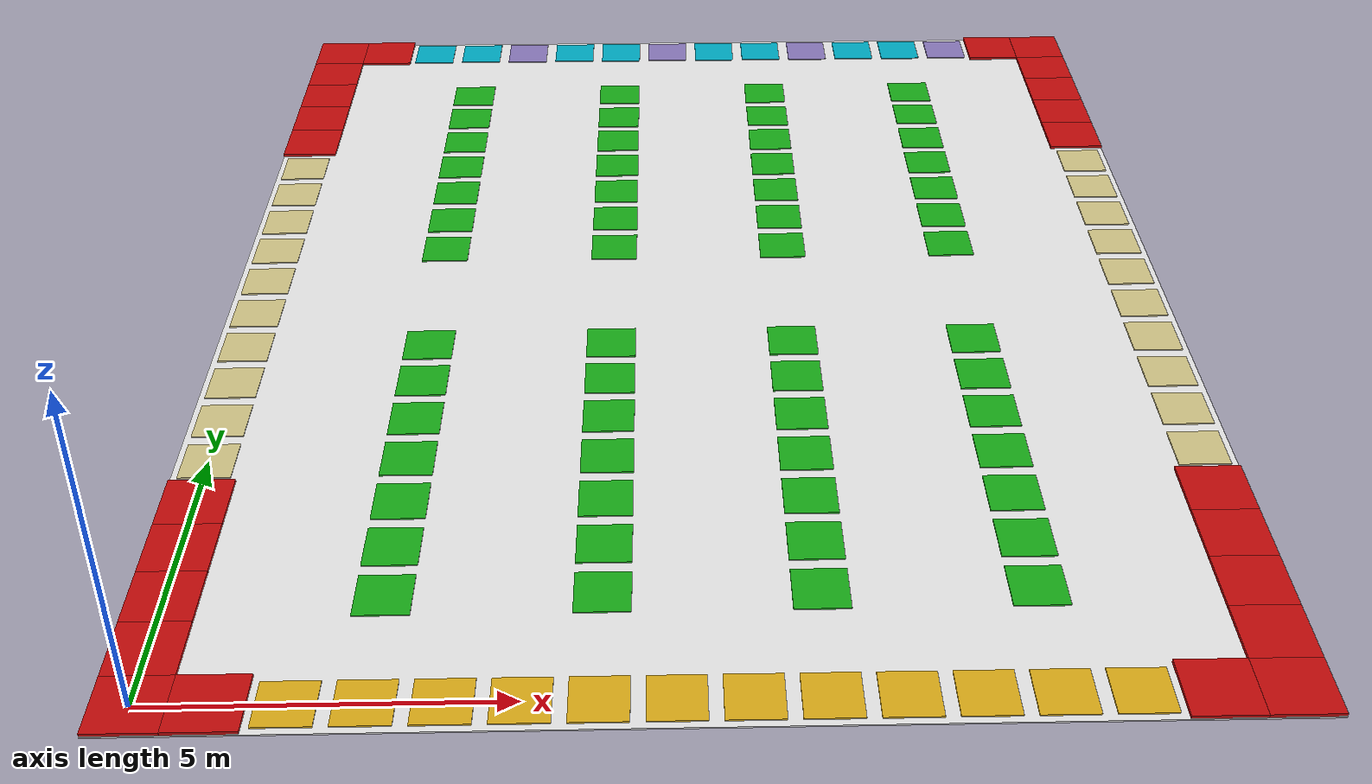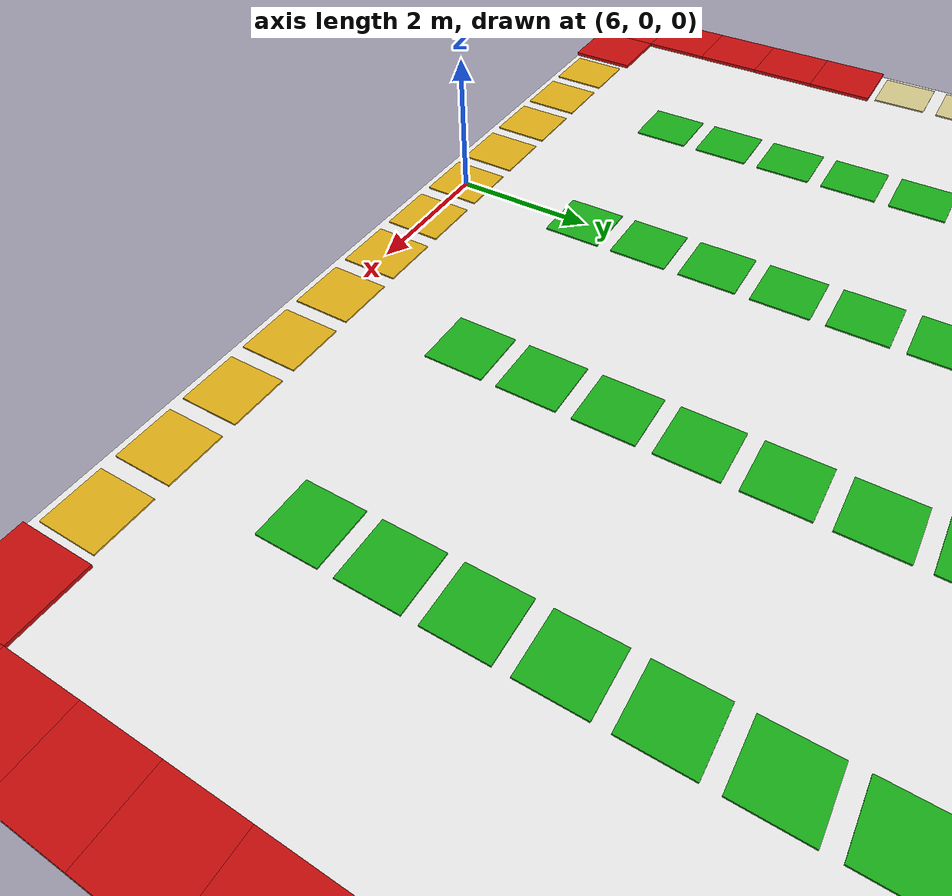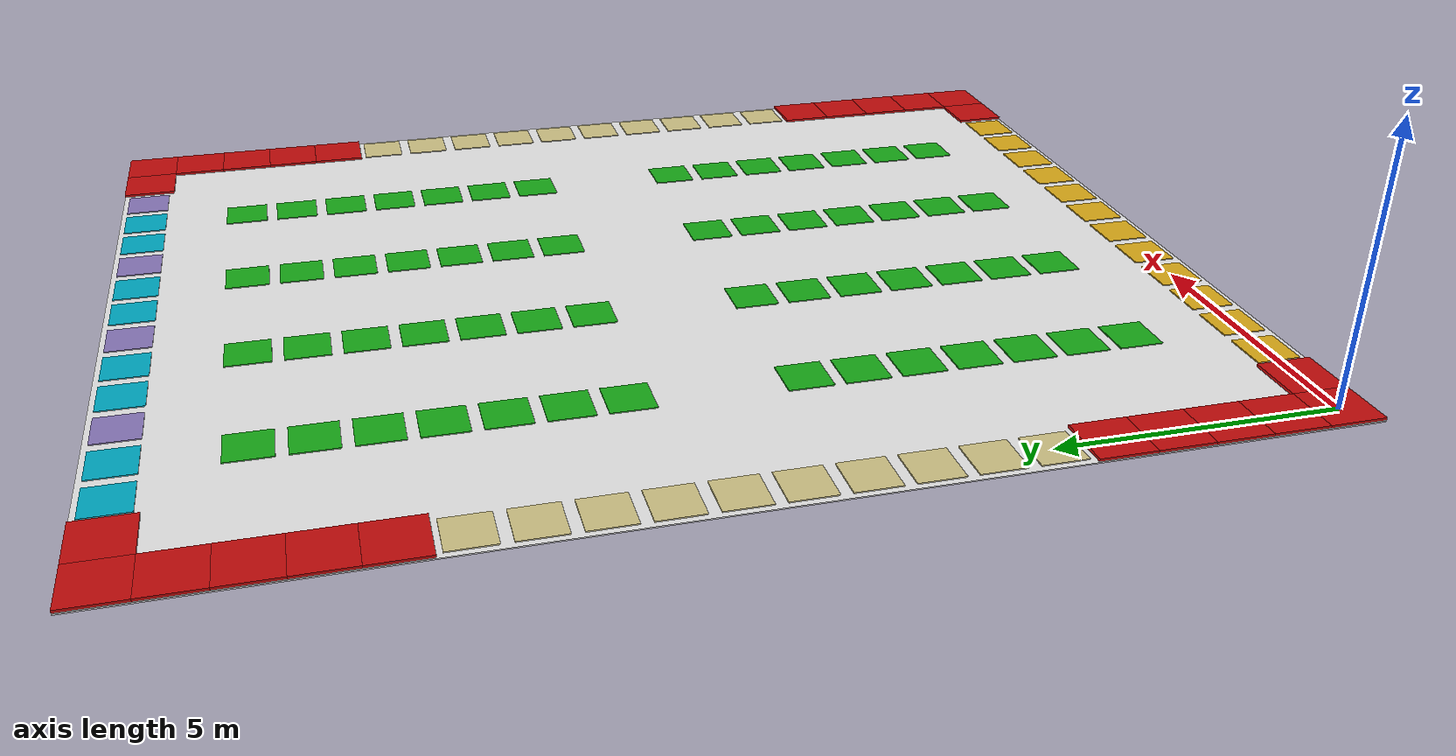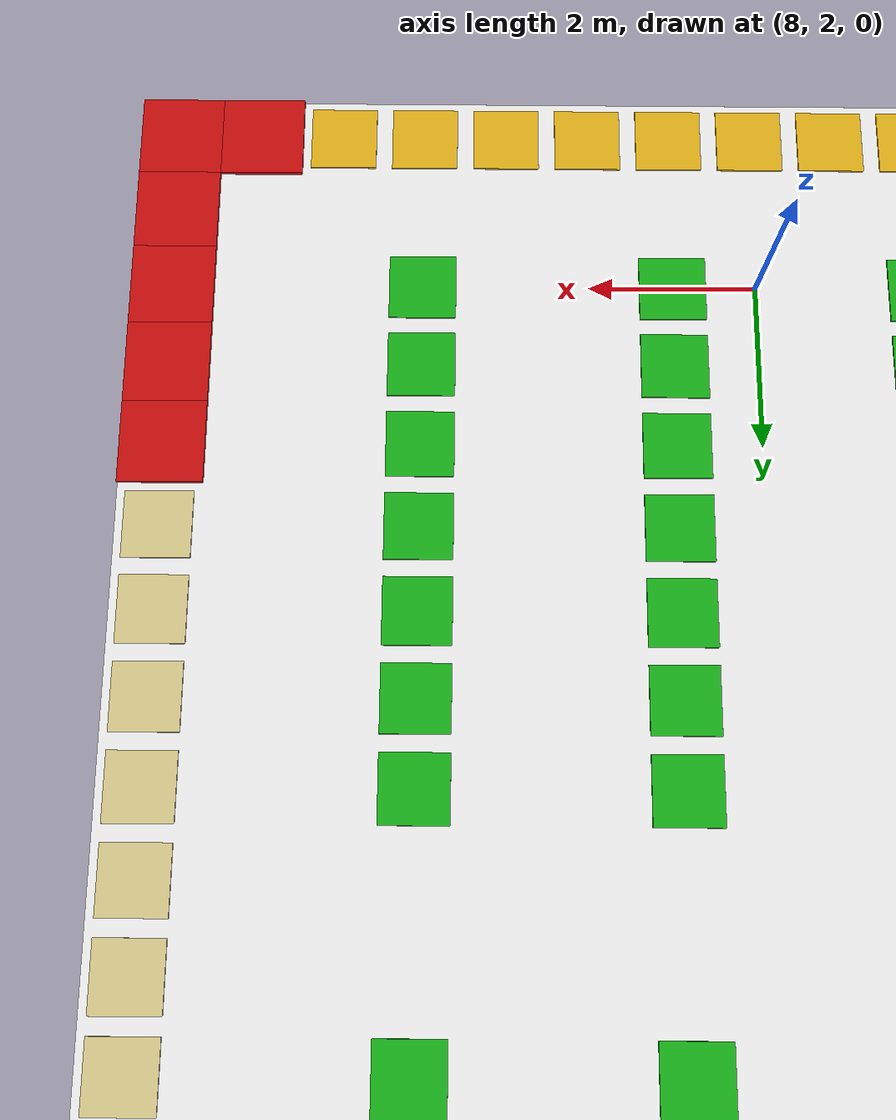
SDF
<sdf version="1.10">
 <world name="my_map_20">
  <model name="warehouse_floor">
   <static>true</static>
   <pose>7.5
        9.5
        0.0
        0 0 0</pose>
   <link name="floor_link">
    <visual name="floor_visual">
     <geometry><box><size>16.0
                20.0
                0.02</size></box></geometry>
     <material><ambient>0.95 0.95 0.95 1</ambient><diffuse>0.95 0.95 0.95 1</diffuse></material>
    </visual>
   </link>
  </model>
  <model name="blocked_0000">
   <static>true</static>
   <pose>0.0
        0.0
        0.045
        0 0 0</pose>
   <link name="link">
    <visual name="visual">
     <geometry><box><size>1.0
                1.0
                0.05</size></box></geometry>
     <material><ambient>0.8 0.05 0.05 1</ambient><diffuse>0.8 0.05 0.05 1</diffuse></material>
    </visual>
   </link>
  </model>
  <model name="blocked_0001">
   <static>true</static>
   <pose>0.0
        1.0
        0.045
        0 0 0</pose>
   <link name="link">
    <visual name="visual">
     <geometry><box><size>1.0
                1.0
                0.05</size></box></geometry>
     <material><ambient>0.8 0.05 0.05 1</ambient><diffuse>0.8 0.05 0.05 1</diffuse></material>
    </visual>
   </link>
  </model>
  <model name="blocked_0002">
   <static>true</static>
   <pose>0.0
        2.0
        0.045
        0 0 0</pose>
   <link name="link">
    <visual name="visual">
     <geometry><box><size>1.0
                1.0
                0.05</size></box></geometry>
     <material><ambient>0.8 0.05 0.05 1</ambient><diffuse>0.8 0.05 0.05 1</diffuse></material>
    </visual>
   </link>
  </model>
  <model name="blocked_0003">
   <static>true</static>
   <pose>0.0
        3.0
        0.045
        0 0 0</pose>
   <link name="link">
    <visual name="visual">
     <geometry><box><size>1.0
                1.0
                0.05</size></box></geometry>
     <material><ambient>0.8 0.05 0.05 1</ambient><diffuse>0.8 0.05 0.05 1</diffuse></material>
    </visual>
   </link>
  </model>
  <model name="blocked_0004">
   <static>true</static>
   <pose>0.0
        4.0
        0.045
        0 0 0</pose>
   <link name="link">
    <visual name="visual">
     <geometry><box><size>1.0
                1.0
                0.05</size></box></geometry>
     <material><ambient>0.8 0.05 0.05 1</ambient><diffuse>0.8 0.05 0.05 1</diffuse></material>
    </visual>
   </link>
  </model>
  <model name="blocked_0005">
   <static>true</static>
   <pose>0.0
        15.0
        0.045
        0 0 0</pose>
   <link name="link">
    <visual name="visual">
     <geometry><box><size>1.0
                1.0
                0.05</size></box></geometry>
     <material><ambient>0.8 0.05 0.05 1</ambient><diffuse>0.8 0.05 0.05 1</diffuse></material>
    </visual>
   </link>
  </model>
  <model name="blocked_0006">
   <static>true</static>
   <pose>0.0
        16.0
        0.045
        0 0 0</pose>
   <link name="link">
    <visual name="visual">
     <geometry><box><size>1.0
                1.0
                0.05</size></box></geometry>
     <material><ambient>0.8 0.05 0.05 1</ambient><diffuse>0.8 0.05 0.05 1</diffuse></material>
    </visual>
   </link>
  </model>
  <model name="blocked_0007">
   <static>true</static>
   <pose>0.0
        17.0
        0.045
        0 0 0</pose>
   <link name="link">
    <visual name="visual">
     <geometry><box><size>1.0
                1.0
                0.05</size></box></geometry>
     <material><ambient>0.8 0.05 0.05 1</ambient><diffuse>0.8 0.05 0.05 1</diffuse></material>
    </visual>
   </link>
  </model>
  <model name="blocked_0008">
   <static>true</static>
   <pose>0.0
        18.0
        0.045
        0 0 0</pose>
   <link name="link">
    <visual name="visual">
     <geometry><box><size>1.0
                1.0
                0.05</size></box></geometry>
     <material><ambient>0.8 0.05 0.05 1</ambient><diffuse>0.8 0.05 0.05 1</diffuse></material>
    </visual>
   </link>
  </model>
  <model name="blocked_0009">
   <static>true</static>
   <pose>0.0
        19.0
        0.045
        0 0 0</pose>
   <link name="link">
    <visual name="visual">
     <geometry><box><size>1.0
                1.0
                0.05</size></box></geometry>
     <material><ambient>0.8 0.05 0.05 1</ambient><diffuse>0.8 0.05 0.05 1</diffuse></material>
    </visual>
   </link>
  </model>
  <model name="blocked_0010">
   <static>true</static>
   <pose>1.0
        0.0
        0.045
        0 0 0</pose>
   <link name="link">
    <visual name="visual">
     <geometry><box><size>1.0
                1.0
                0.05</size></box></geometry>
     <material><ambient>0.8 0.05 0.05 1</ambient><diffuse>0.8 0.05 0.05 1</diffuse></material>
    </visual>
   </link>
  </model>
  <model name="blocked_0011">
   <static>true</static>
   <pose>1.0
        19.0
        0.045
        0 0 0</pose>
   <link name="link">
    <visual name="visual">
     <geometry><box><size>1.0
                1.0
                0.05</size></box></geometry>
     <material><ambient>0.8 0.05 0.05 1</ambient><diffuse>0.8 0.05 0.05 1</diffuse></material>
    </visual>
   </link>
  </model>
  <model name="blocked_0012">
   <static>true</static>
   <pose>14.0
        0.0
        0.045
        0 0 0</pose>
   <link name="link">
    <visual name="visual">
     <geometry><box><size>1.0
                1.0
                0.05</size></box></geometry>
     <material><ambient>0.8 0.05 0.05 1</ambient><diffuse>0.8 0.05 0.05 1</diffuse></material>
    </visual>
   </link>
  </model>
  <model name="blocked_0013">
   <static>true</static>
   <pose>14.0
        19.0
        0.045
        0 0 0</pose>
   <link name="link">
    <visual name="visual">
     <geometry><box><size>1.0
                1.0
                0.05</size></box></geometry>
     <material><ambient>0.8 0.05 0.05 1</ambient><diffuse>0.8 0.05 0.05 1</diffuse></material>
    </visual>
   </link>
  </model>
  <model name="blocked_0014">
   <static>true</static>
   <pose>15.0
        0.0
        0.045
        0 0 0</pose>
   <link name="link">
    <visual name="visual">
     <geometry><box><size>1.0
                1.0
                0.05</size></box></geometry>
     <material><ambient>0.8 0.05 0.05 1</ambient><diffuse>0.8 0.05 0.05 1</diffuse></material>
    </visual>
   </link>
  </model>
  <model name="blocked_0015">
   <static>true</static>
   <pose>15.0
        1.0
        0.045
        0 0 0</pose>
   <link name="link">
    <visual name="visual">
     <geometry><box><size>1.0
                1.0
                0.05</size></box></geometry>
     <material><ambient>0.8 0.05 0.05 1</ambient><diffuse>0.8 0.05 0.05 1</diffuse></material>
    </visual>
   </link>
  </model>
  <model name="blocked_0016">
   <static>true</static>
   <pose>15.0
        2.0
        0.045
        0 0 0</pose>
   <link name="link">
    <visual name="visual">
     <geometry><box><size>1.0
                1.0
                0.05</size></box></geometry>
     <material><ambient>0.8 0.05 0.05 1</ambient><diffuse>0.8 0.05 0.05 1</diffuse></material>
    </visual>
   </link>
  </model>
  <model name="blocked_0017">
   <static>true</static>
   <pose>15.0
        3.0
        0.045
        0 0 0</pose>
   <link name="link">
    <visual name="visual">
     <geometry><box><size>1.0
                1.0
                0.05</size></box></geometry>
     <material><ambient>0.8 0.05 0.05 1</ambient><diffuse>0.8 0.05 0.05 1</diffuse></material>
    </visual>
   </link>
  </model>
  <model name="blocked_0018">
   <static>true</static>
   <pose>15.0
        4.0
        0.045
        0 0 0</pose>
   <link name="link">
    <visual name="visual">
     <geometry><box><size>1.0
                1.0
                0.05</size></box></geometry>
     <material><ambient>0.8 0.05 0.05 1</ambient><diffuse>0.8 0.05 0.05 1</diffuse></material>
    </visual>
   </link>
  </model>
  <model name="blocked_0019">
   <static>true</static>
   <pose>15.0
        15.0
        0.045
        0 0 0</pose>
   <link name="link">
    <visual name="visual">
     <geometry><box><size>1.0
                1.0
                0.05</size></box></geometry>
     <material><ambient>0.8 0.05 0.05 1</ambient><diffuse>0.8 0.05 0.05 1</diffuse></material>
    </visual>
   </link>
  </model>
  <model name="blocked_0020">
   <static>true</static>
   <pose>15.0
        16.0
        0.045
        0 0 0</pose>
   <link name="link">
    <visual name="visual">
     <geometry><box><size>1.0
                1.0
                0.05</size></box></geometry>
     <material><ambient>0.8 0.05 0.05 1</ambient><diffuse>0.8 0.05 0.05 1</diffuse></material>
    </visual>
   </link>
  </model>
  <model name="blocked_0021">
   <static>true</static>
   <pose>15.0
        17.0
        0.045
        0 0 0</pose>
   <link name="link">
    <visual name="visual">
     <geometry><box><size>1.0
                1.0
                0.05</size></box></geometry>
     <material><ambient>0.8 0.05 0.05 1</ambient><diffuse>0.8 0.05 0.05 1</diffuse></material>
    </visual>
   </link>
  </model>
  <model name="blocked_0022">
   <static>true</static>
   <pose>15.0
        18.0
        0.045
        0 0 0</pose>
   <link name="link">
    <visual name="visual">
     <geometry><box><size>1.0
                1.0
                0.05</size></box></geometry>
     <material><ambient>0.8 0.05 0.05 1</ambient><diffuse>0.8 0.05 0.05 1</diffuse></material>
    </visual>
   </link>
  </model>
  <model name="blocked_0023">
   <static>true</static>
   <pose>15.0
        19.0
        0.045
        0 0 0</pose>
   <link name="link">
    <visual name="visual">
     <geometry><box><size>1.0
                1.0
                0.05</size></box></geometry>
     <material><ambient>0.8 0.05 0.05 1</ambient><diffuse>0.8 0.05 0.05 1</diffuse></material>
    </visual>
   </link>
  </model>
  <model name="charging_001">
   <static>true</static>
   <pose>2.0
        19.0
        0.02
        0 0 0</pose>
   <link name="link">
    <visual name="visual">
     <geometry><box><size>0.8
                0.8
                0.02</size></box></geometry>
     <material><ambient>0.00 0.70 0.80 1</ambient><diffuse>0.00 0.70 0.80 1</diffuse></material>
    </visual>
   </link>
  </model>
  <model name="charging_002">
   <static>true</static>
   <pose>3.0
        19.0
        0.02
        0 0 0</pose>
   <link name="link">
    <visual name="visual">
     <geometry><box><size>0.8
                0.8
                0.02</size></box></geometry>
     <material><ambient>0.00 0.70 0.80 1</ambient><diffuse>0.00 0.70 0.80 1</diffuse></material>
    </visual>
   </link>
  </model>
  <model name="charge_queue_001">
   <static>true</static>
   <pose>4.0
        19.0
        0.02
        0 0 0</pose>
   <link name="link">
    <visual name="visual">
     <geometry><box><size>0.8
                0.8
                0.02</size></box></geometry>
     <material><ambient>0.56 0.49 0.76 1</ambient><diffuse>0.56 0.49 0.76 1</diffuse></material>
    </visual>
   </link>
  </model>
  <model name="charging_003">
   <static>true</static>
   <pose>5.0
        19.0
        0.02
        0 0 0</pose>
   <link name="link">
    <visual name="visual">
     <geometry><box><size>0.8
                0.8
                0.02</size></box></geometry>
     <material><ambient>0.00 0.70 0.80 1</ambient><diffuse>0.00 0.70 0.80 1</diffuse></material>
    </visual>
   </link>
  </model>
  <model name="charging_004">
   <static>true</static>
   <pose>6.0
        19.0
        0.02
        0 0 0</pose>
   <link name="link">
    <visual name="visual">
     <geometry><box><size>0.8
                0.8
                0.02</size></box></geometry>
     <material><ambient>0.00 0.70 0.80 1</ambient><diffuse>0.00 0.70 0.80 1</diffuse></material>
    </visual>
   </link>
  </model>
  <model name="charge_queue_002">
   <static>true</static>
   <pose>7.0
        19.0
        0.02
        0 0 0</pose>
   <link name="link">
    <visual name="visual">
     <geometry><box><size>0.8
                0.8
                0.02</size></box></geometry>
     <material><ambient>0.56 0.49 0.76 1</ambient><diffuse>0.56 0.49 0.76 1</diffuse></material>
    </visual>
   </link>
  </model>
  <model name="charging_005">
   <static>true</static>
   <pose>8.0
        19.0
        0.02
        0 0 0</pose>
   <link name="link">
    <visual name="visual">
     <geometry><box><size>0.8
                0.8
                0.02</size></box></geometry>
     <material><ambient>0.00 0.70 0.80 1</ambient><diffuse>0.00 0.70 0.80 1</diffuse></material>
    </visual>
   </link>
  </model>
  <model name="charging_006">
   <static>true</static>
   <pose>9.0
        19.0
        0.02
        0 0 0</pose>
   <link name="link">
    <visual name="visual">
     <geometry><box><size>0.8
                0.8
                0.02</size></box></geometry>
     <material><ambient>0.00 0.70 0.80 1</ambient><diffuse>0.00 0.70 0.80 1</diffuse></material>
    </visual>
   </link>
  </model>
  <model name="charge_queue_003">
   <static>true</static>
   <pose>10.0
        19.0
        0.02
        0 0 0</pose>
   <link name="link">
    <visual name="visual">
     <geometry><box><size>0.8
                0.8
                0.02</size></box></geometry>
     <material><ambient>0.56 0.49 0.76 1</ambient><diffuse>0.56 0.49 0.76 1</diffuse></material>
    </visual>
   </link>
  </model>
  <model name="charging_007">
   <static>true</static>
   <pose>11.0
        19.0
        0.02
        0 0 0</pose>
   <link name="link">
    <visual name="visual">
     <geometry><box><size>0.8
                0.8
                0.02</size></box></geometry>
     <material><ambient>0.00 0.70 0.80 1</ambient><diffuse>0.00 0.70 0.80 1</diffuse></material>
    </visual>
   </link>
  </model>
  <model name="charging_008">
   <static>true</static>
   <pose>12.0
        19.0
        0.02
        0 0 0</pose>
   <link name="link">
    <visual name="visual">
     <geometry><box><size>0.8
                0.8
                0.02</size></box></geometry>
     <material><ambient>0.00 0.70 0.80 1</ambient><diffuse>0.00 0.70 0.80 1</diffuse></material>
    </visual>
   </link>
  </model>
  <model name="charge_queue_004">
   <static>true</static>
   <pose>13.0
        19.0
        0.02
        0 0 0</pose>
   <link name="link">
    <visual name="visual">
     <geometry><box><size>0.8
                0.8
                0.02</size></box></geometry>
     <material><ambient>0.56 0.49 0.76 1</ambient><diffuse>0.56 0.49 0.76 1</diffuse></material>
    </visual>
   </link>
  </model>
  <model name="shelf_001">
   <static>true</static>
   <pose>3.0
        17.0
        0.02
        0 0 0</pose>
   <link name="link">
    <visual name="visual">
     <geometry><box><size>0.8
                0.8
                0.02</size></box></geometry>
     <material><ambient>0.10 0.70 0.10 1</ambient><diffuse>0.10 0.70 0.10 1</diffuse></material>
    </visual>
   </link>
  </model>
  <model name="shelf_002">
   <static>true</static>
   <pose>6.0
        17.0
        0.02
        0 0 0</pose>
   <link name="link">
    <visual name="visual">
     <geometry><box><size>0.8
                0.8
                0.02</size></box></geometry>
     <material><ambient>0.10 0.70 0.10 1</ambient><diffuse>0.10 0.70 0.10 1</diffuse></material>
    </visual>
   </link>
  </model>
  <model name="shelf_003">
   <static>true</static>
   <pose>9.0
        17.0
        0.02
        0 0 0</pose>
   <link name="link">
    <visual name="visual">
     <geometry><box><size>0.8
                0.8
                0.02</size></box></geometry>
     <material><ambient>0.10 0.70 0.10 1</ambient><diffuse>0.10 0.70 0.10 1</diffuse></material>
    </visual>
   </link>
  </model>
  <model name="shelf_004">
   <static>true</static>
   <pose>12.0
        17.0
        0.02
        0 0 0</pose>
   <link name="link">
    <visual name="visual">
     <geometry><box><size>0.8
                0.8
                0.02</size></box></geometry>
     <material><ambient>0.10 0.70 0.10 1</ambient><diffuse>0.10 0.70 0.10 1</diffuse></material>
    </visual>
   </link>
  </model>
  <model name="shelf_005">
   <static>true</static>
   <pose>3.0
        16.0
        0.02
        0 0 0</pose>
   <link name="link">
    <visual name="visual">
     <geometry><box><size>0.8
                0.8
                0.02</size></box></geometry>
     <material><ambient>0.10 0.70 0.10 1</ambient><diffuse>0.10 0.70 0.10 1</diffuse></material>
    </visual>
   </link>
  </model>
  <model name="shelf_006">
   <static>true</static>
   <pose>6.0
        16.0
        0.02
        0 0 0</pose>
   <link name="link">
    <visual name="visual">
     <geometry><box><size>0.8
                0.8
                0.02</size></box></geometry>
     <material><ambient>0.10 0.70 0.10 1</ambient><diffuse>0.10 0.70 0.10 1</diffuse></material>
    </visual>
   </link>
  </model>
  <model name="shelf_007">
   <static>true</static>
   <pose>9.0
        16.0
        0.02
        0 0 0</pose>
   <link name="link">
    <visual name="visual">
     <geometry><box><size>0.8
                0.8
                0.02</size></box></geometry>
     <material><ambient>0.10 0.70 0.10 1</ambient><diffuse>0.10 0.70 0.10 1</diffuse></material>
    </visual>
   </link>
  </model>
  <model name="shelf_008">
   <static>true</static>
   <pose>12.0
        16.0
        0.02
        0 0 0</pose>
   <link name="link">
    <visual name="visual">
     <geometry><box><size>0.8
                0.8
                0.02</size></box></geometry>
     <material><ambient>0.10 0.70 0.10 1</ambient><diffuse>0.10 0.70 0.10 1</diffuse></material>
    </visual>
   </link>
  </model>
  <model name="shelf_009">
   <static>true</static>
   <pose>3.0
        15.0
        0.02
        0 0 0</pose>
   <link name="link">
    <visual name="visual">
     <geometry><box><size>0.8
                0.8
                0.02</size></box></geometry>
     <material><ambient>0.10 0.70 0.10 1</ambient><diffuse>0.10 0.70 0.10 1</diffuse></material>
    </visual>
   </link>
  </model>
  <model name="shelf_010">
   <static>true</static>
   <pose>6.0
        15.0
        0.02
        0 0 0</pose>
   <link name="link">
    <visual name="visual">
     <geometry><box><size>0.8
                0.8
                0.02</size></box></geometry>
     <material><ambient>0.10 0.70 0.10 1</ambient><diffuse>0.10 0.70 0.10 1</diffuse></material>
    </visual>
   </link>
  </model>
  <model name="shelf_011">
   <static>true</static>
   <pose>9.0
        15.0
        0.02
        0 0 0</pose>
   <link name="link">
    <visual name="visual">
     <geometry><box><size>0.8
                0.8
                0.02</size></box></geometry>
     <material><ambient>0.10 0.70 0.10 1</ambient><diffuse>0.10 0.70 0.10 1</diffuse></material>
    </visual>
   </link>
  </model>
  <model name="shelf_012">
   <static>true</static>
   <pose>12.0
        15.0
        0.02
        0 0 0</pose>
   <link name="link">
    <visual name="visual">
     <geometry><box><size>0.8
                0.8
                0.02</size></box></geometry>
     <material><ambient>0.10 0.70 0.10 1</ambient><diffuse>0.10 0.70 0.10 1</diffuse></material>
    </visual>
   </link>
  </model>
  <model name="staging_001">
   <static>true</static>
   <pose>0.0
        14.0
        0.02
        0 0 0</pose>
   <link name="link">
    <visual name="visual">
     <geometry><box><size>0.8
                0.8
                0.02</size></box></geometry>
     <material><ambient>0.85 0.80 0.55 1</ambient><diffuse>0.85 0.80 0.55 1</diffuse></material>
    </visual>
   </link>
  </model>
  <model name="shelf_013">
   <static>true</static>
   <pose>3.0
        14.0
        0.02
        0 0 0</pose>
   <link name="link">
    <visual name="visual">
     <geometry><box><size>0.8
                0.8
                0.02</size></box></geometry>
     <material><ambient>0.10 0.70 0.10 1</ambient><diffuse>0.10 0.70 0.10 1</diffuse></material>
    </visual>
   </link>
  </model>
  <model name="shelf_014">
   <static>true</static>
   <pose>6.0
        14.0
        0.02
        0 0 0</pose>
   <link name="link">
    <visual name="visual">
     <geometry><box><size>0.8
                0.8
                0.02</size></box></geometry>
     <material><ambient>0.10 0.70 0.10 1</ambient><diffuse>0.10 0.70 0.10 1</diffuse></material>
    </visual>
   </link>
  </model>
  <model name="shelf_015">
   <static>true</static>
   <pose>9.0
        14.0
        0.02
        0 0 0</pose>
   <link name="link">
    <visual name="visual">
     <geometry><box><size>0.8
                0.8
                0.02</size></box></geometry>
     <material><ambient>0.10 0.70 0.10 1</ambient><diffuse>0.10 0.70 0.10 1</diffuse></material>
    </visual>
   </link>
  </model>
  <model name="shelf_016">
   <static>true</static>
   <pose>12.0
        14.0
        0.02
        0 0 0</pose>
   <link name="link">
    <visual name="visual">
     <geometry><box><size>0.8
                0.8
                0.02</size></box></geometry>
     <material><ambient>0.10 0.70 0.10 1</ambient><diffuse>0.10 0.70 0.10 1</diffuse></material>
    </visual>
   </link>
  </model>
  <model name="staging_002">
   <static>true</static>
   <pose>15.0
        14.0
        0.02
        0 0 0</pose>
   <link name="link">
    <visual name="visual">
     <geometry><box><size>0.8
                0.8
                0.02</size></box></geometry>
     <material><ambient>0.85 0.80 0.55 1</ambient><diffuse>0.85 0.80 0.55 1</diffuse></material>
    </visual>
   </link>
  </model>
  <model name="staging_003">
   <static>true</static>
   <pose>0.0
        13.0
        0.02
        0 0 0</pose>
   <link name="link">
    <visual name="visual">
     <geometry><box><size>0.8
                0.8
                0.02</size></box></geometry>
     <material><ambient>0.85 0.80 0.55 1</ambient><diffuse>0.85 0.80 0.55 1</diffuse></material>
    </visual>
   </link>
  </model>
  <model name="shelf_017">
   <static>true</static>
   <pose>3.0
        13.0
        0.02
        0 0 0</pose>
   <link name="link">
    <visual name="visual">
     <geometry><box><size>0.8
                0.8
                0.02</size></box></geometry>
     <material><ambient>0.10 0.70 0.10 1</ambient><diffuse>0.10 0.70 0.10 1</diffuse></material>
    </visual>
   </link>
  </model>
  <model name="shelf_018">
   <static>true</static>
   <pose>6.0
        13.0
        0.02
        0 0 0</pose>
   <link name="link">
    <visual name="visual">
     <geometry><box><size>0.8
                0.8
                0.02</size></box></geometry>
     <material><ambient>0.10 0.70 0.10 1</ambient><diffuse>0.10 0.70 0.10 1</diffuse></material>
    </visual>
   </link>
  </model>
  <model name="shelf_019">
   <static>true</static>
   <pose>9.0
        13.0
        0.02
        0 0 0</pose>
   <link name="link">
    <visual name="visual">
     <geometry><box><size>0.8
                0.8
                0.02</size></box></geometry>
     <material><ambient>0.10 0.70 0.10 1</ambient><diffuse>0.10 0.70 0.10 1</diffuse></material>
    </visual>
   </link>
  </model>
  <model name="shelf_020">
   <static>true</static>
   <pose>12.0
        13.0
        0.02
        0 0 0</pose>
   <link name="link">
    <visual name="visual">
     <geometry><box><size>0.8
                0.8
                0.02</size></box></geometry>
     <material><ambient>0.10 0.70 0.10 1</ambient><diffuse>0.10 0.70 0.10 1</diffuse></material>
    </visual>
   </link>
  </model>
  <model name="staging_004">
   <static>true</static>
   <pose>15.0
        13.0
        0.02
        0 0 0</pose>
   <link name="link">
    <visual name="visual">
     <geometry><box><size>0.8
                0.8
                0.02</size></box></geometry>
     <material><ambient>0.85 0.80 0.55 1</ambient><diffuse>0.85 0.80 0.55 1</diffuse></material>
    </visual>
   </link>
  </model>
  <model name="staging_005">
   <static>true</static>
   <pose>0.0
        12.0
        0.02
        0 0 0</pose>
   <link name="link">
    <visual name="visual">
     <geometry><box><size>0.8
                0.8
                0.02</size></box></geometry>
     <material><ambient>0.85 0.80 0.55 1</ambient><diffuse>0.85 0.80 0.55 1</diffuse></material>
    </visual>
   </link>
  </model>
  <model name="shelf_021">
   <static>true</static>
   <pose>3.0
        12.0
        0.02
        0 0 0</pose>
   <link name="link">
    <visual name="visual">
     <geometry><box><size>0.8
                0.8
                0.02</size></box></geometry>
     <material><ambient>0.10 0.70 0.10 1</ambient><diffuse>0.10 0.70 0.10 1</diffuse></material>
    </visual>
   </link>
  </model>
  <model name="shelf_022">
   <static>true</static>
   <pose>6.0
        12.0
        0.02
        0 0 0</pose>
   <link name="link">
    <visual name="visual">
     <geometry><box><size>0.8
                0.8
                0.02</size></box></geometry>
     <material><ambient>0.10 0.70 0.10 1</ambient><diffuse>0.10 0.70 0.10 1</diffuse></material>
    </visual>
   </link>
  </model>
  <model name="shelf_023">
   <static>true</static>
   <pose>9.0
        12.0
        0.02
        0 0 0</pose>
   <link name="link">
    <visual name="visual">
     <geometry><box><size>0.8
                0.8
                0.02</size></box></geometry>
     <material><ambient>0.10 0.70 0.10 1</ambient><diffuse>0.10 0.70 0.10 1</diffuse></material>
    </visual>
   </link>
  </model>
  <model name="shelf_024">
   <static>true</static>
   <pose>12.0
        12.0
        0.02
        0 0 0</pose>
   <link name="link">
    <visual name="visual">
     <geometry><box><size>0.8
                0.8
                0.02</size></box></geometry>
     <material><ambient>0.10 0.70 0.10 1</ambient><diffuse>0.10 0.70 0.10 1</diffuse></material>
    </visual>
   </link>
  </model>
  <model name="staging_006">
   <static>true</static>
   <pose>15.0
        12.0
        0.02
        0 0 0</pose>
   <link name="link">
    <visual name="visual">
     <geometry><box><size>0.8
                0.8
                0.02</size></box></geometry>
     <material><ambient>0.85 0.80 0.55 1</ambient><diffuse>0.85 0.80 0.55 1</diffuse></material>
    </visual>
   </link>
  </model>
  <model name="staging_007">
   <static>true</static>
   <pose>0.0
        11.0
        0.02
        0 0 0</pose>
   <link name="link">
    <visual name="visual">
     <geometry><box><size>0.8
                0.8
                0.02</size></box></geometry>
     <material><ambient>0.85 0.80 0.55 1</ambient><diffuse>0.85 0.80 0.55 1</diffuse></material>
    </visual>
   </link>
  </model>
  <model name="shelf_025">
   <static>true</static>
   <pose>3.0
        11.0
        0.02
        0 0 0</pose>
   <link name="link">
    <visual name="visual">
     <geometry><box><size>0.8
                0.8
                0.02</size></box></geometry>
     <material><ambient>0.10 0.70 0.10 1</ambient><diffuse>0.10 0.70 0.10 1</diffuse></material>
    </visual>
   </link>
  </model>
  <model name="shelf_026">
   <static>true</static>
   <pose>6.0
        11.0
        0.02
        0 0 0</pose>
   <link name="link">
    <visual name="visual">
     <geometry><box><size>0.8
                0.8
                0.02</size></box></geometry>
     <material><ambient>0.10 0.70 0.10 1</ambient><diffuse>0.10 0.70 0.10 1</diffuse></material>
    </visual>
   </link>
  </model>
  <model name="shelf_027">
   <static>true</static>
   <pose>9.0
        11.0
        0.02
        0 0 0</pose>
   <link name="link">
    <visual name="visual">
     <geometry><box><size>0.8
                0.8
                0.02</size></box></geometry>
     <material><ambient>0.10 0.70 0.10 1</ambient><diffuse>0.10 0.70 0.10 1</diffuse></material>
    </visual>
   </link>
  </model>
  <model name="shelf_028">
   <static>true</static>
   <pose>12.0
        11.0
        0.02
        0 0 0</pose>
   <link name="link">
    <visual name="visual">
     <geometry><box><size>0.8
                0.8
                0.02</size></box></geometry>
     <material><ambient>0.10 0.70 0.10 1</ambient><diffuse>0.10 0.70 0.10 1</diffuse></material>
    </visual>
   </link>
  </model>
  <model name="staging_008">
   <static>true</static>
   <pose>15.0
        11.0
        0.02
        0 0 0</pose>
   <link name="link">
    <visual name="visual">
     <geometry><box><size>0.8
                0.8
                0.02</size></box></geometry>
     <material><ambient>0.85 0.80 0.55 1</ambient><diffuse>0.85 0.80 0.55 1</diffuse></material>
    </visual>
   </link>
  </model>
  <model name="staging_009">
   <static>true</static>
   <pose>0.0
        10.0
        0.02
        0 0 0</pose>
   <link name="link">
    <visual name="visual">
     <geometry><box><size>0.8
                0.8
                0.02</size></box></geometry>
     <material><ambient>0.85 0.80 0.55 1</ambient><diffuse>0.85 0.80 0.55 1</diffuse></material>
    </visual>
   </link>
  </model>
  <model name="staging_010">
   <static>true</static>
   <pose>15.0
        10.0
        0.02
        0 0 0</pose>
   <link name="link">
    <visual name="visual">
     <geometry><box><size>0.8
                0.8
                0.02</size></box></geometry>
     <material><ambient>0.85 0.80 0.55 1</ambient><diffuse>0.85 0.80 0.55 1</diffuse></material>
    </visual>
   </link>
  </model>
  <model name="staging_011">
   <static>true</static>
   <pose>0.0
        9.0
        0.02
        0 0 0</pose>
   <link name="link">
    <visual name="visual">
     <geometry><box><size>0.8
                0.8
                0.02</size></box></geometry>
     <material><ambient>0.85 0.80 0.55 1</ambient><diffuse>0.85 0.80 0.55 1</diffuse></material>
    </visual>
   </link>
  </model>
  <model name="staging_012">
   <static>true</static>
   <pose>15.0
        9.0
        0.02
        0 0 0</pose>
   <link name="link">
    <visual name="visual">
     <geometry><box><size>0.8
                0.8
                0.02</size></box></geometry>
     <material><ambient>0.85 0.80 0.55 1</ambient><diffuse>0.85 0.80 0.55 1</diffuse></material>
    </visual>
   </link>
  </model>
  <model name="staging_013">
   <static>true</static>
   <pose>0.0
        8.0
        0.02
        0 0 0</pose>
   <link name="link">
    <visual name="visual">
     <geometry><box><size>0.8
                0.8
                0.02</size></box></geometry>
     <material><ambient>0.85 0.80 0.55 1</ambient><diffuse>0.85 0.80 0.55 1</diffuse></material>
    </visual>
   </link>
  </model>
  <model name="shelf_029">
   <static>true</static>
   <pose>3.0
        8.0
        0.02
        0 0 0</pose>
   <link name="link">
    <visual name="visual">
     <geometry><box><size>0.8
                0.8
                0.02</size></box></geometry>
     <material><ambient>0.10 0.70 0.10 1</ambient><diffuse>0.10 0.70 0.10 1</diffuse></material>
    </visual>
   </link>
  </model>
  <model name="shelf_030">
   <static>true</static>
   <pose>6.0
        8.0
        0.02
        0 0 0</pose>
   <link name="link">
    <visual name="visual">
     <geometry><box><size>0.8
                0.8
                0.02</size></box></geometry>
     <material><ambient>0.10 0.70 0.10 1</ambient><diffuse>0.10 0.70 0.10 1</diffuse></material>
    </visual>
   </link>
  </model>
  <model name="shelf_031">
   <static>true</static>
   <pose>9.0
        8.0
        0.02
        0 0 0</pose>
   <link name="link">
    <visual name="visual">
     <geometry><box><size>0.8
                0.8
                0.02</size></box></geometry>
     <material><ambient>0.10 0.70 0.10 1</ambient><diffuse>0.10 0.70 0.10 1</diffuse></material>
    </visual>
   </link>
  </model>
  <model name="shelf_032">
   <static>true</static>
   <pose>12.0
        8.0
        0.02
        0 0 0</pose>
   <link name="link">
    <visual name="visual">
     <geometry><box><size>0.8
                0.8
                0.02</size></box></geometry>
     <material><ambient>0.10 0.70 0.10 1</ambient><diffuse>0.10 0.70 0.10 1</diffuse></material>
    </visual>
   </link>
  </model>
  <model name="staging_014">
   <static>true</static>
   <pose>15.0
        8.0
        0.02
        0 0 0</pose>
   <link name="link">
    <visual name="visual">
     <geometry><box><size>0.8
                0.8
                0.02</size></box></geometry>
     <material><ambient>0.85 0.80 0.55 1</ambient><diffuse>0.85 0.80 0.55 1</diffuse></material>
    </visual>
   </link>
  </model>
  <model name="staging_015">
   <static>true</static>
   <pose>0.0
        7.0
        0.02
        0 0 0</pose>
   <link name="link">
    <visual name="visual">
     <geometry><box><size>0.8
                0.8
                0.02</size></box></geometry>
     <material><ambient>0.85 0.80 0.55 1</ambient><diffuse>0.85 0.80 0.55 1</diffuse></material>
    </visual>
   </link>
  </model>
  <model name="shelf_033">
   <static>true</static>
   <pose>3.0
        7.0
        0.02
        0 0 0</pose>
   <link name="link">
    <visual name="visual">
     <geometry><box><size>0.8
                0.8
                0.02</size></box></geometry>
     <material><ambient>0.10 0.70 0.10 1</ambient><diffuse>0.10 0.70 0.10 1</diffuse></material>
    </visual>
   </link>
  </model>
  <model name="shelf_034">
   <static>true</static>
   <pose>6.0
        7.0
        0.02
        0 0 0</pose>
   <link name="link">
    <visual name="visual">
     <geometry><box><size>0.8
                0.8
                0.02</size></box></geometry>
     <material><ambient>0.10 0.70 0.10 1</ambient><diffuse>0.10 0.70 0.10 1</diffuse></material>
    </visual>
   </link>
  </model>
  <model name="shelf_035">
   <static>true</static>
   <pose>9.0
        7.0
        0.02
        0 0 0</pose>
   <link name="link">
    <visual name="visual">
     <geometry><box><size>0.8
                0.8
                0.02</size></box></geometry>
     <material><ambient>0.10 0.70 0.10 1</ambient><diffuse>0.10 0.70 0.10 1</diffuse></material>
    </visual>
   </link>
  </model>
  <model name="shelf_036">
   <static>true</static>
   <pose>12.0
        7.0
        0.02
        0 0 0</pose>
   <link name="link">
    <visual name="visual">
     <geometry><box><size>0.8
                0.8
                0.02</size></box></geometry>
     <material><ambient>0.10 0.70 0.10 1</ambient><diffuse>0.10 0.70 0.10 1</diffuse></material>
    </visual>
   </link>
  </model>
  <model name="staging_016">
   <static>true</static>
   <pose>15.0
        7.0
        0.02
        0 0 0</pose>
   <link name="link">
    <visual name="visual">
     <geometry><box><size>0.8
                0.8
                0.02</size></box></geometry>
     <material><ambient>0.85 0.80 0.55 1</ambient><diffuse>0.85 0.80 0.55 1</diffuse></material>
    </visual>
   </link>
  </model>
  <model name="staging_017">
   <static>true</static>
   <pose>0.0
        6.0
        0.02
        0 0 0</pose>
   <link name="link">
    <visual name="visual">
     <geometry><box><size>0.8
                0.8
                0.02</size></box></geometry>
     <material><ambient>0.85 0.80 0.55 1</ambient><diffuse>0.85 0.80 0.55 1</diffuse></material>
    </visual>
   </link>
  </model>
  <model name="shelf_037">
   <static>true</static>
   <pose>3.0
        6.0
        0.02
        0 0 0</pose>
   <link name="link">
    <visual name="visual">
     <geometry><box><size>0.8
                0.8
                0.02</size></box></geometry>
     <material><ambient>0.10 0.70 0.10 1</ambient><diffuse>0.10 0.70 0.10 1</diffuse></material>
    </visual>
   </link>
  </model>
  <model name="shelf_038">
   <static>true</static>
   <pose>6.0
        6.0
        0.02
        0 0 0</pose>
   <link name="link">
    <visual name="visual">
     <geometry><box><size>0.8
                0.8
                0.02</size></box></geometry>
     <material><ambient>0.10 0.70 0.10 1</ambient><diffuse>0.10 0.70 0.10 1</diffuse></material>
    </visual>
   </link>
  </model>
  <model name="shelf_039">
   <static>true</static>
   <pose>9.0
        6.0
        0.02
        0 0 0</pose>
   <link name="link">
    <visual name="visual">
     <geometry><box><size>0.8
                0.8
                0.02</size></box></geometry>
     <material><ambient>0.10 0.70 0.10 1</ambient><diffuse>0.10 0.70 0.10 1</diffuse></material>
    </visual>
   </link>
  </model>
  <model name="shelf_040">
   <static>true</static>
   <pose>12.0
        6.0
        0.02
        0 0 0</pose>
   <link name="link">
    <visual name="visual">
     <geometry><box><size>0.8
                0.8
                0.02</size></box></geometry>
     <material><ambient>0.10 0.70 0.10 1</ambient><diffuse>0.10 0.70 0.10 1</diffuse></material>
    </visual>
   </link>
  </model>
  <model name="staging_018">
   <static>true</static>
   <pose>15.0
        6.0
        0.02
        0 0 0</pose>
   <link name="link">
    <visual name="visual">
     <geometry><box><size>0.8
                0.8
                0.02</size></box></geometry>
     <material><ambient>0.85 0.80 0.55 1</ambient><diffuse>0.85 0.80 0.55 1</diffuse></material>
    </visual>
   </link>
  </model>
  <model name="staging_019">
   <static>true</static>
   <pose>0.0
        5.0
        0.02
        0 0 0</pose>
   <link name="link">
    <visual name="visual">
     <geometry><box><size>0.8
                0.8
                0.02</size></box></geometry>
     <material><ambient>0.85 0.80 0.55 1</ambient><diffuse>0.85 0.80 0.55 1</diffuse></material>
    </visual>
   </link>
  </model>
  <model name="shelf_041">
   <static>true</static>
   <pose>3.0
        5.0
        0.02
        0 0 0</pose>
   <link name="link">
    <visual name="visual">
     <geometry><box><size>0.8
                0.8
                0.02</size></box></geometry>
     <material><ambient>0.10 0.70 0.10 1</ambient><diffuse>0.10 0.70 0.10 1</diffuse></material>
    </visual>
   </link>
  </model>
  <model name="shelf_042">
   <static>true</static>
   <pose>6.0
        5.0
        0.02
        0 0 0</pose>
   <link name="link">
    <visual name="visual">
     <geometry><box><size>0.8
                0.8
                0.02</size></box></geometry>
     <material><ambient>0.10 0.70 0.10 1</ambient><diffuse>0.10 0.70 0.10 1</diffuse></material>
    </visual>
   </link>
  </model>
  <model name="shelf_043">
   <static>true</static>
   <pose>9.0
        5.0
        0.02
        0 0 0</pose>
   <link name="link">
    <visual name="visual">
     <geometry><box><size>0.8
                0.8
                0.02</size></box></geometry>
     <material><ambient>0.10 0.70 0.10 1</ambient><diffuse>0.10 0.70 0.10 1</diffuse></material>
    </visual>
   </link>
  </model>
  <model name="shelf_044">
   <static>true</static>
   <pose>12.0
        5.0
        0.02
        0 0 0</pose>
   <link name="link">
    <visual name="visual">
     <geometry><box><size>0.8
                0.8
                0.02</size></box></geometry>
     <material><ambient>0.10 0.70 0.10 1</ambient><diffuse>0.10 0.70 0.10 1</diffuse></material>
    </visual>
   </link>
  </model>
  <model name="staging_020">
   <static>true</static>
   <pose>15.0
        5.0
        0.02
        0 0 0</pose>
   <link name="link">
    <visual name="visual">
     <geometry><box><size>0.8
                0.8
                0.02</size></box></geometry>
     <material><ambient>0.85 0.80 0.55 1</ambient><diffuse>0.85 0.80 0.55 1</diffuse></material>
    </visual>
   </link>
  </model>
  <model name="shelf_045">
   <static>true</static>
   <pose>3.0
        4.0
        0.02
        0 0 0</pose>
   <link name="link">
    <visual name="visual">
     <geometry><box><size>0.8
                0.8
                0.02</size></box></geometry>
     <material><ambient>0.10 0.70 0.10 1</ambient><diffuse>0.10 0.70 0.10 1</diffuse></material>
    </visual>
   </link>
  </model>
  <model name="shelf_046">
   <static>true</static>
   <pose>6.0
        4.0
        0.02
        0 0 0</pose>
   <link name="link">
    <visual name="visual">
     <geometry><box><size>0.8
                0.8
                0.02</size></box></geometry>
     <material><ambient>0.10 0.70 0.10 1</ambient><diffuse>0.10 0.70 0.10 1</diffuse></material>
    </visual>
   </link>
  </model>
  <model name="shelf_047">
   <static>true</static>
   <pose>9.0
        4.0
        0.02
        0 0 0</pose>
   <link name="link">
    <visual name="visual">
     <geometry><box><size>0.8
                0.8
                0.02</size></box></geometry>
     <material><ambient>0.10 0.70 0.10 1</ambient><diffuse>0.10 0.70 0.10 1</diffuse></material>
    </visual>
   </link>
  </model>
  <model name="shelf_048">
   <static>true</static>
   <pose>12.0
        4.0
        0.02
        0 0 0</pose>
   <link name="link">
    <visual name="visual">
     <geometry><box><size>0.8
                0.8
                0.02</size></box></geometry>
     <material><ambient>0.10 0.70 0.10 1</ambient><diffuse>0.10 0.70 0.10 1</diffuse></material>
    </visual>
   </link>
  </model>
  <model name="shelf_049">
   <static>true</static>
   <pose>3.0
        3.0
        0.02
        0 0 0</pose>
   <link name="link">
    <visual name="visual">
     <geometry><box><size>0.8
                0.8
                0.02</size></box></geometry>
     <material><ambient>0.10 0.70 0.10 1</ambient><diffuse>0.10 0.70 0.10 1</diffuse></material>
    </visual>
   </link>
  </model>
  <model name="shelf_050">
   <static>true</static>
   <pose>6.0
        3.0
        0.02
        0 0 0</pose>
   <link name="link">
    <visual name="visual">
     <geometry><box><size>0.8
                0.8
                0.02</size></box></geometry>
     <material><ambient>0.10 0.70 0.10 1</ambient><diffuse>0.10 0.70 0.10 1</diffuse></material>
    </visual>
   </link>
  </model>
  <model name="shelf_051">
   <static>true</static>
   <pose>9.0
        3.0
        0.02
        0 0 0</pose>
   <link name="link">
    <visual name="visual">
     <geometry><box><size>0.8
                0.8
                0.02</size></box></geometry>
     <material><ambient>0.10 0.70 0.10 1</ambient><diffuse>0.10 0.70 0.10 1</diffuse></material>
    </visual>
   </link>
  </model>
  <model name="shelf_052">
   <static>true</static>
   <pose>12.0
        3.0
        0.02
        0 0 0</pose>
   <link name="link">
    <visual name="visual">
     <geometry><box><size>0.8
                0.8
                0.02</size></box></geometry>
     <material><ambient>0.10 0.70 0.10 1</ambient><diffuse>0.10 0.70 0.10 1</diffuse></material>
    </visual>
   </link>
  </model>
  <model name="shelf_053">
   <static>true</static>
   <pose>3.0
        2.0
        0.02
        0 0 0</pose>
   <link name="link">
    <visual name="visual">
     <geometry><box><size>0.8
                0.8
                0.02</size></box></geometry>
     <material><ambient>0.10 0.70 0.10 1</ambient><diffuse>0.10 0.70 0.10 1</diffuse></material>
    </visual>
   </link>
  </model>
  <model name="shelf_054">
   <static>true</static>
   <pose>6.0
        2.0
        0.02
        0 0 0</pose>
   <link name="link">
    <visual name="visual">
     <geometry><box><size>0.8
                0.8
                0.02</size></box></geometry>
     <material><ambient>0.10 0.70 0.10 1</ambient><diffuse>0.10 0.70 0.10 1</diffuse></material>
    </visual>
   </link>
  </model>
  <model name="shelf_055">
   <static>true</static>
   <pose>9.0
        2.0
        0.02
        0 0 0</pose>
   <link name="link">
    <visual name="visual">
     <geometry><box><size>0.8
                0.8
                0.02</size></box></geometry>
     <material><ambient>0.10 0.70 0.10 1</ambient><diffuse>0.10 0.70 0.10 1</diffuse></material>
    </visual>
   </link>
  </model>
  <model name="shelf_056">
   <static>true</static>
   <pose>12.0
        2.0
        0.02
        0 0 0</pose>
   <link name="link">
    <visual name="visual">
     <geometry><box><size>0.8
                0.8
                0.02</size></box></geometry>
     <material><ambient>0.10 0.70 0.10 1</ambient><diffuse>0.10 0.70 0.10 1</diffuse></material>
    </visual>
   </link>
  </model>
  <model name="dropoff_001">
   <static>true</static>
   <pose>2.0
        0.0
        0.02
        0 0 0</pose>
   <link name="link">
    <visual name="visual">
     <geometry><box><size>0.8
                0.8
                0.02</size></box></geometry>
     <material><ambient>0.90 0.70 0.10 1</ambient><diffuse>0.90 0.70 0.10 1</diffuse></material>
    </visual>
   </link>
  </model>
  <model name="dropoff_002">
   <static>true</static>
   <pose>3.0
        0.0
        0.02
        0 0 0</pose>
   <link name="link">
    <visual name="visual">
     <geometry><box><size>0.8
                0.8
                0.02</size></box></geometry>
     <material><ambient>0.90 0.70 0.10 1</ambient><diffuse>0.90 0.70 0.10 1</diffuse></material>
    </visual>
   </link>
  </model>
  <model name="dropoff_003">
   <static>true</static>
   <pose>4.0
        0.0
        0.02
        0 0 0</pose>
   <link name="link">
    <visual name="visual">
     <geometry><box><size>0.8
                0.8
                0.02</size></box></geometry>
     <material><ambient>0.90 0.70 0.10 1</ambient><diffuse>0.90 0.70 0.10 1</diffuse></material>
    </visual>
   </link>
  </model>
  <model name="dropoff_004">
   <static>true</static>
   <pose>5.0
        0.0
        0.02
        0 0 0</pose>
   <link name="link">
    <visual name="visual">
     <geometry><box><size>0.8
                0.8
                0.02</size></box></geometry>
     <material><ambient>0.90 0.70 0.10 1</ambient><diffuse>0.90 0.70 0.10 1</diffuse></material>
    </visual>
   </link>
  </model>
  <model name="dropoff_005">
   <static>true</static>
   <pose>6.0
        0.0
        0.02
        0 0 0</pose>
   <link name="link">
    <visual name="visual">
     <geometry><box><size>0.8
                0.8
                0.02</size></box></geometry>
     <material><ambient>0.90 0.70 0.10 1</ambient><diffuse>0.90 0.70 0.10 1</diffuse></material>
    </visual>
   </link>
  </model>
  <model name="dropoff_006">
   <static>true</static>
   <pose>7.0
        0.0
        0.02
        0 0 0</pose>
   <link name="link">
    <visual name="visual">
     <geometry><box><size>0.8
                0.8
                0.02</size></box></geometry>
     <material><ambient>0.90 0.70 0.10 1</ambient><diffuse>0.90 0.70 0.10 1</diffuse></material>
    </visual>
   </link>
  </model>
  <model name="dropoff_007">
   <static>true</static>
   <pose>8.0
        0.0
        0.02
        0 0 0</pose>
   <link name="link">
    <visual name="visual">
     <geometry><box><size>0.8
                0.8
                0.02</size></box></geometry>
     <material><ambient>0.90 0.70 0.10 1</ambient><diffuse>0.90 0.70 0.10 1</diffuse></material>
    </visual>
   </link>
  </model>
  <model name="dropoff_008">
   <static>true</static>
   <pose>9.0
        0.0
        0.02
        0 0 0</pose>
   <link name="link">
    <visual name="visual">
     <geometry><box><size>0.8
                0.8
                0.02</size></box></geometry>
     <material><ambient>0.90 0.70 0.10 1</ambient><diffuse>0.90 0.70 0.10 1</diffuse></material>
    </visual>
   </link>
  </model>
  <model name="dropoff_009">
   <static>true</static>
   <pose>10.0
        0.0
        0.02
        0 0 0</pose>
   <link name="link">
    <visual name="visual">
     <geometry><box><size>0.8
                0.8
                0.02</size></box></geometry>
     <material><ambient>0.90 0.70 0.10 1</ambient><diffuse>0.90 0.70 0.10 1</diffuse></material>
    </visual>
   </link>
  </model>
  <model name="dropoff_010">
   <static>true</static>
   <pose>11.0
        0.0
        0.02
        0 0 0</pose>
   <link name="link">
    <visual name="visual">
     <geometry><box><size>0.8
                0.8
                0.02</size></box></geometry>
     <material><ambient>0.90 0.70 0.10 1</ambient><diffuse>0.90 0.70 0.10 1</diffuse></material>
    </visual>
   </link>
  </model>
  <model name="dropoff_011">
   <static>true</static>
   <pose>12.0
        0.0
        0.02
        0 0 0</pose>
   <link name="link">
    <visual name="visual">
     <geometry><box><size>0.8
                0.8
                0.02</size></box></geometry>
     <material><ambient>0.90 0.70 0.10 1</ambient><diffuse>0.90 0.70 0.10 1</diffuse></material>
    </visual>
   </link>
  </model>
  <model name="dropoff_012">
   <static>true</static>
   <pose>13.0
        0.0
        0.02
        0 0 0</pose>
   <link name="link">
    <visual name="visual">
     <geometry><box><size>0.8
                0.8
                0.02</size></box></geometry>
     <material><ambient>0.90 0.70 0.10 1</ambient><diffuse>0.90 0.70 0.10 1</diffuse></material>
    </visual>
   </link>
  </model>
 </world>
</sdf>
